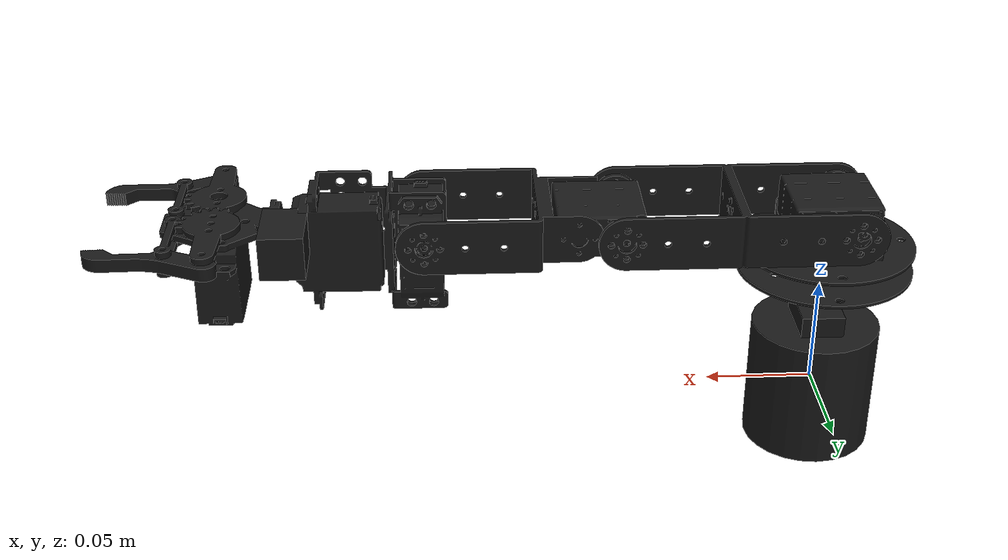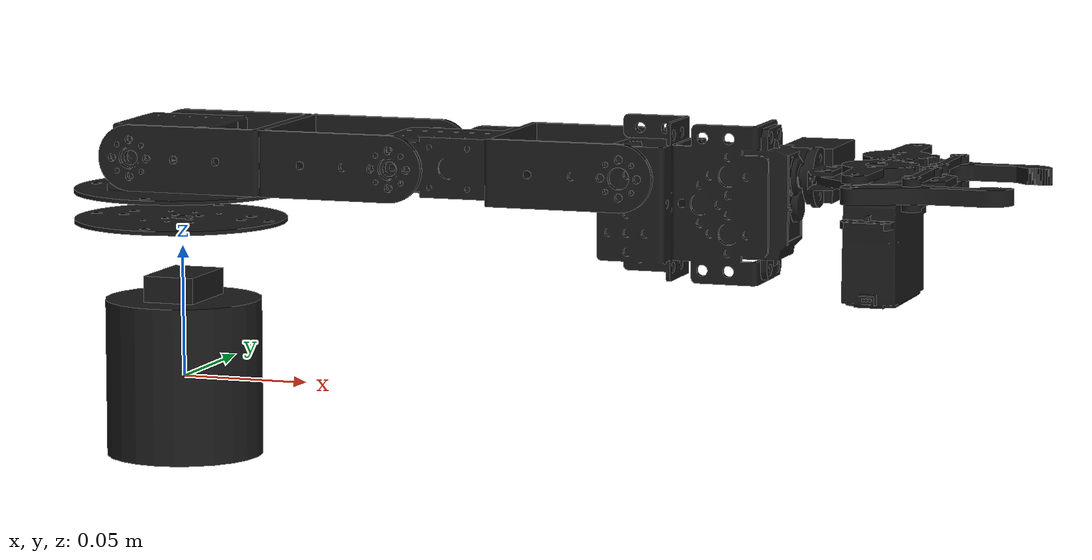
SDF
<?xml version="1.0"?>
<sdf version="1.9">
  <model name="learm_with_ardupilot">
    <include merge="true">
      <uri>model://learm</uri>
    </include>

    <!-- ArduPilot requires the robot have an IMU -->
    <link name="imu_link">
      <inertial>
        <pose>0 0 0 0 0 0</pose>
        <mass>0.15</mass>
        <inertia>
          <ixx>0.00001</ixx>
          <ixy>0</ixy>
          <ixz>0</ixz>
          <iyy>0.00002</iyy>
          <iyz>0</iyz>
          <izz>0.00002</izz>
        </inertia>
      </inertial>
      <sensor name="imu_sensor" type="imu">
        <gz_frame_id>imu_link</gz_frame_id>
        <pose degrees="true">0 0 0 180 0 0</pose>
        <always_on>1</always_on>
        <update_rate>1000.0</update_rate>
      </sensor>
    </link>
    <joint name="imu_joint" type="revolute">
      <parent>arm_base_link</parent>
      <child>imu_link</child>
      <axis>
        <xyz>0 0 1</xyz>
        <limit>
          <lower>0</lower>
          <upper>0</upper>
        </limit>
        <dynamics>
          <damping>1.0</damping>
        </dynamics>
      </axis>
    </joint>

    <plugin name="ArduPilotPlugin"
      filename="ArduPilotPlugin">
      <fdm_addr>127.0.0.1</fdm_addr>
      <fdm_port_in>9002</fdm_port_in>
      <connectionTimeoutMaxCount>5</connectionTimeoutMaxCount>
      <lock_step>1</lock_step>
      <no_time_sync>1</no_time_sync>
      <have_32_channels>0</have_32_channels>
      <modelXYZToAirplaneXForwardZDown degrees="true">0 0 0 180 0 0</modelXYZToAirplaneXForwardZDown>
      <gazeboXYZToNED degrees="true">0 0 0 180 0 90</gazeboXYZToNED>
      <imuName>imu_link::imu_sensor</imuName>

      <control channel="6">
        <jointName>shoulder_pan</jointName>
        <useForce>1</useForce>
        <multiplier>3.142</multiplier>
        <offset>-0.5</offset>
        <servo_min>1000</servo_min>
        <servo_max>2000</servo_max>
        <type>COMMAND</type>
        <cmd_topic>/learm/shoulder_pan/cmd_pos</cmd_topic>
      </control>

      <control channel="7">
        <jointName>shoulder_lift</jointName>
        <useForce>1</useForce>
        <multiplier>-3.142</multiplier>
        <offset>0.0</offset>
        <servo_min>1000</servo_min>
        <servo_max>2000</servo_max>
        <type>COMMAND</type>
        <cmd_topic>/learm/shoulder_lift/cmd_pos</cmd_topic>
      </control>

      <control channel="8">
        <jointName>elbow</jointName>
        <useForce>1</useForce>
        <multiplier>3.142</multiplier>
        <offset>-0.5</offset>
        <servo_min>1000</servo_min>
        <servo_max>2000</servo_max>
        <type>COMMAND</type>
        <cmd_topic>/learm/elbow/cmd_pos</cmd_topic>
      </control>

      <control channel="9">
        <jointName>wrist_flex</jointName>
        <useForce>1</useForce>
        <multiplier>3.142</multiplier>
        <offset>-0.5</offset>
        <servo_min>1000</servo_min>
        <servo_max>2000</servo_max>
        <type>COMMAND</type>
        <cmd_topic>/learm/wrist_flex/cmd_pos</cmd_topic>
      </control>

      <control channel="10">
        <jointName>wrist_roll</jointName>
        <useForce>1</useForce>
        <multiplier>3.142</multiplier>
        <offset>-0.5</offset>
        <servo_min>1000</servo_min>
        <servo_max>2000</servo_max>
        <type>COMMAND</type>
        <cmd_topic>/learm/wrist_roll/cmd_pos</cmd_topic>
      </control>

      <control channel="11">
        <jointName>grip_left</jointName>
        <useForce>1</useForce>
        <multiplier>1.57</multiplier>
        <offset>0.0</offset>
        <servo_min>1000</servo_min>
        <servo_max>2000</servo_max>
        <type>COMMAND</type>
        <cmd_topic>/learm/grip/cmd_pos</cmd_topic>
      </control>
    </plugin>
  </model>
</sdf>

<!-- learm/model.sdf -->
<sdf version="1.9">
  <model name="learm">
    <link name="arm_base_link">
      <self_collide>0</self_collide>
      <inertial>
        <pose>0 0 0 0 0 0</pose>
        <mass>0.034268493</mass>
        <inertia>
          <ixx>1.7991E-05</ixx>
          <ixy>0</ixy>
          <ixz>0</ixz>
          <iyy>1.7991E-05</iyy>
          <iyz>0</iyz>
          <izz>1.54208E-05</izz>
        </inertia>
      </inertial>
      <collision name="arm_base_link_collision">
        <pose>0 0 0 0 0 0</pose>
        <geometry>
          <cylinder>
            <radius>0.03</radius>
            <length>0.06</length>
          </cylinder>
        </geometry>
      </collision>
      <visual name="arm_base_link_visual">
        <pose>0 0 0 0 0 0</pose>
        <geometry>
          <cylinder>
            <radius>0.03</radius>
            <length>0.06</length>
          </cylinder>
        </geometry>
        <material>
          <ambient>0.1 0.1 0.1</ambient>
          <diffuse>0.1 0.1 0.1</diffuse>
          <specular>0.01 0.01 0.01 1.0</specular>
        </material>
      </visual>
    </link>

    <link name="camera_link">
      <pose relative_to="camera_base_joint">0 0 0 0 0 0</pose>
      <inertial>
        <pose>0 0 0 0 0 0</pose>
        <mass>0.01212</mass>
        <inertia>
          <ixx>0.000001313</ixx>
          <ixy>0</ixy>
          <ixz>0</ixz>
          <iyy>0.000000808</iyy>
          <iyz>0</iyz>
          <izz>0.000001313</izz>
        </inertia>
      </inertial>
      <collision name="camera_link_collision">
        <pose>0 0 0 0 0 0</pose>
        <geometry>
          <box>
            <size>0.02 0.03 0.02</size>
          </box>
        </geometry>
      </collision>
      <visual name="camera_link_visual">
        <pose>0 0 0 0 0 0</pose>
        <geometry>
          <box>
            <size>0.02 0.03 0.02</size>
          </box>
        </geometry>
        <material>
          <ambient>0.1 0.1 0.1</ambient>
          <diffuse>0.1 0.1 0.1</diffuse>
          <specular>0.01 0.01 0.01 1.0</specular>
        </material>
      </visual>
      <sensor name="camera_base" type="camera">
        <camera>
          <horizontal_fov>1.0472</horizontal_fov>
          <image>
            <width>320</width>
            <height>240</height>
          </image>
          <clip>
            <near>0.05</near>
            <far>100</far>
          </clip>
        </camera>
        <always_on>true</always_on>
        <update_rate>10</update_rate>
      </sensor>
    </link>
    <joint name="camera_base_joint" type="fixed">
      <pose relative_to="arm_base_link">0 0 0.03 0 0 0</pose>
      <parent>arm_base_link</parent>
      <child>camera_link</child>
    </joint>

    <link name="shoulder_link">
      <self_collide>0</self_collide>
      <pose relative_to="shoulder_pan">0 0 0 0 0 0</pose>
      <inertial>
        <pose>0 0 0 0 0 0</pose>
        <mass>0.02424</mass>
        <inertia>
          <ixx>0.00000505</ixx>
          <ixy>0</ixy>
          <ixz>0</ixz>
          <iyy>0.00000505</iyy>
          <iyz>0</iyz>
          <izz>0.000006464</izz>
        </inertia>
      </inertial>
      <collision name="shoulder_link_collision">
        <pose>0 0 0 0 0 0</pose>
        <geometry>
          <mesh>
            <scale>1 1 1</scale>
            <uri>package://ardupilot_gz_description/models/learm/meshes/shoulder.stl</uri>
          </mesh>
        </geometry>
      </collision>
      <visual name="shoulder_link_visual">
        <pose>0 0 0 0 0 0</pose>
        <geometry>
          <mesh>
            <scale>1 1 1</scale>
            <uri>package://ardupilot_gz_description/models/learm/meshes/shoulder.stl</uri>
          </mesh>
        </geometry>
        <material>
          <ambient>0.1 0.1 0.1</ambient>
          <diffuse>0.1 0.1 0.1</diffuse>
          <specular>0.01 0.01 0.01 1.0</specular>
        </material>
      </visual>
    </link>
    <joint name="shoulder_pan" type="revolute">
      <pose relative_to="arm_base_link">0 0 0.059 0 0 0</pose>
      <parent>arm_base_link</parent>
      <child>shoulder_link</child>
      <axis>
        <xyz>0 0 1</xyz>
        <limit>
          <lower>-1.57</lower>
          <upper>1.57</upper>
        </limit>
        <dynamics>
          <damping>0.01</damping>
        </dynamics>
      </axis>
    </joint>

    <link name="humerus_link">
      <self_collide>0</self_collide>
      <pose relative_to="shoulder_lift">0 0 0 0 0 0</pose>
      <inertial>
        <pose>0 0 0.03 0 0 0</pose>
        <mass>0.019831304</mass>
        <inertia>
          <ixx>2.23515E-05</ixx>
          <ixy>0</ixy>
          <ixz>0</ixz>
          <iyy>1.92529E-05</iyy>
          <iyz>0</iyz>
          <izz>5.1644E-06</izz>
        </inertia>
      </inertial>
      <collision name="humerus_link_collision">
        <pose>0 0 0 0 0 0</pose>
        <geometry>
          <mesh>
            <scale>1 1 1</scale>
            <uri>package://ardupilot_gz_description/models/learm/meshes/humerus.stl</uri>
          </mesh>
        </geometry>
      </collision>
      <visual name="humerus_link_visual">
        <pose>0 0 0 0 0 0</pose>
        <geometry>
          <mesh>
            <scale>1 1 1</scale>
            <uri>package://ardupilot_gz_description/models/learm/meshes/humerus.stl</uri>
          </mesh>
        </geometry>
        <material>
          <ambient>0.1 0.1 0.1</ambient>
          <diffuse>0.1 0.1 0.1</diffuse>
          <specular>0.01 0.01 0.01 1.0</specular>
        </material>
      </visual>
    </link>
    <joint name="shoulder_lift" type="revolute">
      <pose relative_to="shoulder_link" degrees="true">-0.01 0 0.028 0 90 0</pose>
      <parent>shoulder_link</parent>
      <child>humerus_link</child>
      <axis>
        <xyz>0 1 0</xyz>
        <limit>
          <lower>-3.142</lower>
          <upper>0.0</upper>
        </limit>
        <dynamics>
          <damping>0.01</damping>
        </dynamics>
      </axis>
    </joint>

    <link name="forearm_link">
      <self_collide>0</self_collide>
      <pose relative_to="elbow">0 0 0 0 0 0</pose>
      <inertial>
        <pose>0 0 0.01 0 0 0</pose>
        <mass>0.039662607</mass>
        <inertia>
          <ixx>1.35514E-05</ixx>
          <ixy>0</ixy>
          <ixz>0</ixz>
          <iyy>1.03288E-05</iyy>
          <iyz>0</iyz>
          <izz>7.35411E-06</izz>
        </inertia>
      </inertial>
      <collision name="forearm_link_collision">
        <pose>0 0 0 0 0 0</pose>
        <geometry>
          <mesh>
            <scale>1 1 1</scale>
            <uri>package://ardupilot_gz_description/models/learm/meshes/forearm.stl</uri>
          </mesh>
        </geometry>
      </collision>
      <visual name="forearm_link_visual">
        <pose>0 0 0 0 0 0</pose>
        <geometry>
          <mesh>
            <scale>1 1 1</scale>
            <uri>package://ardupilot_gz_description/models/learm/meshes/forearm.stl</uri>
          </mesh>
        </geometry>
        <material>
          <ambient>0.1 0.1 0.1</ambient>
          <diffuse>0.1 0.1 0.1</diffuse>
          <specular>0.01 0.01 0.01 1.0</specular>
        </material>
      </visual>
    </link>
    <joint name="elbow" type="revolute">
      <pose relative_to="humerus_link">0 0 0.105 0 0 0</pose>
      <parent>humerus_link</parent>
      <child>forearm_link</child>
      <axis>
        <xyz>0 -1 0</xyz>
        <limit>
          <lower>-1.57</lower>
          <upper>1.57</upper>
        </limit>
        <dynamics>
          <damping>0.04</damping>
        </dynamics>
      </axis>
    </joint>

    <link name="wrist_link">
      <self_collide>0</self_collide>
      <pose relative_to="wrist_flex">0 0 0 0 0 0</pose>
      <inertial>
        <pose>0.01 0 0.02 0 0 0</pose>
        <mass>0.07272</mass>
        <inertia>
          <ixx>0.00002727</ixx>
          <ixy>0</ixy>
          <ixz>0</ixz>
          <iyy>0.000031512</iyy>
          <iyz>0</iyz>
          <izz>0.00001515</izz>
        </inertia>
      </inertial>
      <collision name="wrist_link_collision">
        <pose>0 0 0 0 0 0</pose>
        <geometry>
          <mesh>
            <scale>1 1 1</scale>
            <uri>package://ardupilot_gz_description/models/learm/meshes/wrist.stl</uri>
          </mesh>
        </geometry>
      </collision>
      <visual name="wrist_link_visual">
        <pose>0 0 0 0 0 0</pose>
        <geometry>
          <mesh>
            <scale>1 1 1</scale>
            <uri>package://ardupilot_gz_description/models/learm/meshes/wrist.stl</uri>
          </mesh>
        </geometry>
        <material>
          <ambient>0.1 0.1 0.1</ambient>
          <diffuse>0.1 0.1 0.1</diffuse>
          <specular>0.01 0.01 0.01 1.0</specular>
        </material>
      </visual>
    </link>
    <joint name="wrist_flex" type="revolute">
      <pose relative_to="forearm_link">0 0 0.09 0 0 0</pose>
      <parent>forearm_link</parent>
      <child>wrist_link</child>
      <axis>
        <xyz>0 -1 0</xyz>
        <limit>
          <lower>-1.57</lower>
          <upper>1.57</upper>
        </limit>
        <dynamics>
          <damping>0.04</damping>
        </dynamics>
      </axis>
    </joint>

    <link name="hand_link">
      <self_collide>0</self_collide>
      <pose relative_to="wrist_roll">0 0 0 0 0 0</pose>
      <inertial>
        <pose>0.02 0 0.03 0 0 0</pose>
        <mass>0.06464</mass>
        <inertia>
          <ixx>1.72373E-05</ixx>
          <ixy>0</ixy>
          <ixz>0</ixz>
          <iyy>1.72373E-05</iyy>
          <iyz>0</iyz>
          <izz>1.72373E-05</izz>
        </inertia>
      </inertial>
      <collision name="hand_link_collision">
        <pose>0 0 0 0 0 0</pose>
        <geometry>
          <mesh>
            <scale>1 1 1</scale>
            <uri>package://ardupilot_gz_description/models/learm/meshes/hand.stl</uri>
          </mesh>
        </geometry>
      </collision>
      <visual name="hand_link_visual">
        <pose>0 0 0 0 0 0</pose>
        <geometry>
          <mesh>
            <scale>1 1 1</scale>
            <uri>package://ardupilot_gz_description/models/learm/meshes/hand.stl</uri>
          </mesh>
        </geometry>
        <material>
          <ambient>0.1 0.1 0.1</ambient>
          <diffuse>0.1 0.1 0.1</diffuse>
          <specular>0.01 0.01 0.01 1.0</specular>
        </material>
      </visual>
    </link>
    <joint name="wrist_roll" type="revolute">
      <pose relative_to="wrist_link">0 0 0.06 0 0 0</pose>
      <parent>wrist_link</parent>
      <child>hand_link</child>
      <axis>
        <xyz>0 0 1</xyz>
        <limit>
          <lower>-1.57</lower>
          <upper>1.57</upper>
        </limit>
        <dynamics>
          <damping>0.04</damping>
        </dynamics>
      </axis>
    </joint>

    <link name="camera_wrist_link">
      <pose relative_to="camera_wrist_joint">0 0 0 0 0 0</pose>
      <inertial>
        <pose>0 0 0 0 0 0</pose>
        <mass>0.01212</mass>
        <inertia>
          <ixx>0.000001313</ixx>
          <ixy>0</ixy>
          <ixz>0</ixz>
          <iyy>0.000000808</iyy>
          <iyz>0</iyz>
          <izz>0.000001313</izz>
        </inertia>
      </inertial>
      <collision name="camera_wrist_link_collision">
        <pose>0 0 0 0 0 0</pose>
        <geometry>
          <box>
            <size>0.02 0.03 0.02</size>
          </box>
        </geometry>
      </collision>
      <visual name="camera_wrist_link_visual">
        <pose>0 0 0 0 0 0</pose>
        <geometry>
          <box>
            <size>0.02 0.03 0.02</size>
          </box>
        </geometry>
        <material>
          <ambient>0.1 0.1 0.1</ambient>
          <diffuse>0.1 0.1 0.1</diffuse>
          <specular>0.01 0.01 0.01 1.0</specular>
        </material>
      </visual>
      <sensor name="camera_wrist" type="camera">
        <camera>
          <horizontal_fov>1.0472</horizontal_fov>
          <image>
            <width>320</width>
            <height>240</height>
          </image>
          <clip>
            <near>0.05</near>
            <far>100</far>
          </clip>
        </camera>
        <always_on>true</always_on>
        <update_rate>10</update_rate>
      </sensor>
    </link>
    <joint name="camera_wrist_joint" type="fixed">
      <pose relative_to="hand_link">0 0.02 0 0 0 0</pose>
      <parent>hand_link</parent>
      <child>camera_wrist_link</child>
    </joint>

    <link name="grip_left_link">
      <self_collide>0</self_collide>
      <pose relative_to="grip_left">0 0 0 0 0 0</pose>
      <inertial>
        <pose>0 0 0.01 0 0 0</pose>
        <mass>0.0037875</mass>
        <inertia>
          <ixx>8.60078E-07</ixx>
          <ixy>0</ixy>
          <ixz>0</ixz>
          <iyy>7.96953E-07</iyy>
          <iyz>0</iyz>
          <izz>7.89063E-08</izz>
        </inertia>
      </inertial>
      <collision name="grip_left_link_collision">
        <pose>0 0 0 0 0 0</pose>
        <geometry>
          <mesh>
            <scale>1 1 1</scale>
            <uri>package://ardupilot_gz_description/models/learm/meshes/carpal-left.stl</uri>
          </mesh>
        </geometry>
      </collision>
      <visual name="grip_left_link_visual">
        <pose>0 0 0 0 0 0</pose>
        <geometry>
          <mesh>
            <scale>1 1 1</scale>
            <uri>package://ardupilot_gz_description/models/learm/meshes/carpal-left.stl</uri>
          </mesh>
        </geometry>
        <material>
          <ambient>0.1 0.1 0.1</ambient>
          <diffuse>0.1 0.1 0.1</diffuse>
          <specular>0.01 0.01 0.01 1.0</specular>
        </material>
      </visual>
    </link>
    <joint name="grip_left" type="revolute">
      <pose relative_to="hand_link">-0.006 0.0137 0.0318 -1.57 0 0</pose>
      <parent>hand_link</parent>
      <child>grip_left_link</child>
      <axis>
        <xyz>1 0 0</xyz>
        <limit>
          <lower>0</lower>
          <upper>1.57</upper>
        </limit>
        <dynamics>
          <damping>0.01</damping>
        </dynamics>
      </axis>
    </joint>

    <link name="finger_left_link">
      <self_collide>0</self_collide>
      <pose relative_to="finger_left">0 0 0 0 0 0</pose>
      <inertial>
        <pose>0 -0.01 0.025 0 0 0</pose>
        <mass>0.00303</mass>
        <inertia>
          <ixx>9.3425E-07</ixx>
          <ixy>0</ixy>
          <ixz>0</ixz>
          <iyy>9.15313E-07</iyy>
          <iyz>0</iyz>
          <izz>3.15625E-08</izz>
        </inertia>
      </inertial>
      <collision name="finger_left_link_collision">
        <pose>0 0 0 0 0 0</pose>
        <geometry>
          <mesh>
            <scale>1 1 1</scale>
            <uri>package://ardupilot_gz_description/models/learm/meshes/finger.stl</uri>
          </mesh>
        </geometry>
      </collision>
      <visual name="finger_left_link_visual">
        <pose>0 0 0 0 0 0</pose>
        <geometry>
          <mesh>
            <scale>1 1 1</scale>
            <uri>package://ardupilot_gz_description/models/learm/meshes/finger.stl</uri>
          </mesh>
        </geometry>
        <material>
          <ambient>0.1 0.1 0.1</ambient>
          <diffuse>0.1 0.1 0.1</diffuse>
          <specular>0.01 0.01 0.01 1.0</specular>
        </material>
      </visual>
    </link>
    <joint name="finger_left" type="revolute">
      <pose relative_to="grip_left_link">0.006 0 0.029 1.57 0 0</pose>
      <parent>grip_left_link</parent>
      <child>finger_left_link</child>
      <axis>
        <xyz>-1 0 0</xyz>
        <limit>
          <lower>0</lower>
          <upper>1.57</upper>
        </limit>
        <dynamics>
          <damping>0.01</damping>
        </dynamics>
      </axis>
    </joint>

    <link name="grip_right_link">
      <self_collide>0</self_collide>
      <pose relative_to="grip_right">0 0 0 0 0 0</pose>
      <inertial>
        <pose>0 0 0.01 0 0 0</pose>
        <mass>0.0037875</mass>
        <inertia>
          <ixx>8.60078E-07</ixx>
          <ixy>0</ixy>
          <ixz>0</ixz>
          <iyy>7.96953E-07</iyy>
          <iyz>0</iyz>
          <izz>7.89063E-08</izz>
        </inertia>
      </inertial>
      <collision name="grip_right_link_collision">
        <pose>0 0 0 0 0 0</pose>
        <geometry>
          <mesh>
            <scale>1 1 1</scale>
            <uri>package://ardupilot_gz_description/models/learm/meshes/carpal-right.stl</uri>
          </mesh>
        </geometry>
      </collision>
      <visual name="grip_right_link_visual">
        <pose>0 0 0 0 0 0</pose>
        <geometry>
          <mesh>
            <scale>1 1 1</scale>
            <uri>package://ardupilot_gz_description/models/learm/meshes/carpal-right.stl</uri>
          </mesh>
        </geometry>
        <material>
          <ambient>0.1 0.1 0.1</ambient>
          <diffuse>0.1 0.1 0.1</diffuse>
          <specular>0.01 0.01 0.01 1.0</specular>
        </material>
      </visual>
    </link>
    <joint name="grip_right" type="revolute">
      <pose relative_to="hand_link">-0.008 -0.0137 0.0315 1.57 0 0</pose>
      <parent>hand_link</parent>
      <child>grip_right_link</child>
      <axis>
        <xyz>-1 0 0</xyz>
        <limit>
          <lower>0</lower>
          <upper>1.57</upper>
        </limit>
        <dynamics>
          <damping>0.01</damping>
        </dynamics>
      </axis>
    </joint>

    <link name="finger_right_link">
      <self_collide>0</self_collide>
      <pose relative_to="finger_right">0 0 0 0 0 0</pose>
      <inertial>
        <pose>0 0.01 0.025 0 0 0</pose>
        <mass>0.00303</mass>
        <inertia>
          <ixx>9.3425E-07</ixx>
          <ixy>0</ixy>
          <ixz>0</ixz>
          <iyy>9.15313E-07</iyy>
          <iyz>0</iyz>
          <izz>3.15625E-08</izz>
        </inertia>
      </inertial>
      <collision name="finger_right_link_collision">
        <pose>0 0 0 0 0 3.1415899999999999</pose>
        <geometry>
          <mesh>
            <scale>1 1 1</scale>
            <uri>package://ardupilot_gz_description/models/learm/meshes/finger.stl</uri>
          </mesh>
        </geometry>
      </collision>
      <visual name="finger_right_link_visual">
        <pose>0 0 0 0 0 3.1415899999999999</pose>
        <geometry>
          <mesh>
            <scale>1 1 1</scale>
            <uri>package://ardupilot_gz_description/models/learm/meshes/finger.stl</uri>
          </mesh>
        </geometry>
        <material>
          <ambient>0.1 0.1 0.1</ambient>
          <diffuse>0.1 0.1 0.1</diffuse>
          <specular>0.01 0.01 0.01 1.0</specular>
        </material>
      </visual>
    </link>
    <joint name="finger_right" type="revolute">
      <pose relative_to="grip_right_link">0.008 0 0.03 -1.57 0 0</pose>
      <parent>grip_right_link</parent>
      <child>finger_right_link</child>
      <axis>
        <xyz>1 0 0</xyz>
        <limit>
          <lower>0</lower>
          <upper>1.57</upper>
        </limit>
        <dynamics>
          <damping>0.01</damping>
        </dynamics>
      </axis>
    </joint>

    <link name="tendon_left_link">
      <self_collide>0</self_collide>
      <pose relative_to="tendon_left">0 0 0 0 0 0</pose>
      <inertial>
        <pose>0 0 0.02 0 0 0</pose>
        <mass>0.00202</mass>
        <inertia>
          <ixx>2.86167E-07</ixx>
          <ixy>0</ixy>
          <ixz>0</ixz>
          <iyy>2.73542E-07</iyy>
          <iyz>0</iyz>
          <izz>2.10417E-08</izz>
        </inertia>
      </inertial>
      <collision name="tendon_left_link_collision">
        <pose>0 0 0 0 0 0</pose>
        <geometry>
          <mesh>
            <scale>1 1 1</scale>
            <uri>package://ardupilot_gz_description/models/learm/meshes/tendon.stl</uri>
          </mesh>
        </geometry>
      </collision>
      <visual name="tendon_left_link_visual">
        <pose>0 0 0 0 0 0</pose>
        <geometry>
          <mesh>
            <scale>1 1 1</scale>
            <uri>package://ardupilot_gz_description/models/learm/meshes/tendon.stl</uri>
          </mesh>
        </geometry>
        <material>
          <ambient>0.1 0.1 0.1</ambient>
          <diffuse>0.1 0.1 0.1</diffuse>
          <specular>0.01 0.01 0.01 1.0</specular>
        </material>
      </visual>
    </link>
    <joint name="tendon_left" type="revolute">
      <pose relative_to="hand_link">0 0.005 0.05 -1.57 0 0</pose>
      <parent>hand_link</parent>
      <child>tendon_left_link</child>
      <axis>
        <xyz>1 0 0</xyz>
        <limit>
          <lower>0</lower>
          <upper>1.57</upper>
        </limit>
        <dynamics>
          <damping>0.01</damping>
        </dynamics>
      </axis>
    </joint>

    <link name="tendon_right_link">
      <self_collide>0</self_collide>
      <pose relative_to="tendon_right">0 0 0 0 0 0</pose>
      <inertial>
        <pose>0 0 0.02 0 0 0</pose>
        <mass>0.00202</mass>
        <inertia>
          <ixx>2.86167E-07</ixx>
          <ixy>0</ixy>
          <ixz>0</ixz>
          <iyy>2.73542E-07</iyy>
          <iyz>0</iyz>
          <izz>2.10417E-08</izz>
        </inertia>
      </inertial>
      <collision name="tendon_right_link_collision">
        <pose>0 0 0 0 0 0</pose>
        <geometry>
          <mesh>
            <scale>1 1 1</scale>
            <uri>package://ardupilot_gz_description/models/learm/meshes/tendon.stl</uri>
          </mesh>
        </geometry>
      </collision>
      <visual name="tendon_right_link_visual">
        <pose>0 0 0 0 0 0</pose>
        <geometry>
          <mesh>
            <scale>1 1 1</scale>
            <uri>package://ardupilot_gz_description/models/learm/meshes/tendon.stl</uri>
          </mesh>
        </geometry>
        <material>
          <ambient>0.1 0.1 0.1</ambient>
          <diffuse>0.1 0.1 0.1</diffuse>
          <specular>0.01 0.01 0.01 1.0</specular>
        </material>
      </visual>
    </link>
    <joint name="tendon_right" type="revolute">
      <pose relative_to="hand_link">0 -0.005 0.05 1.57 0 0</pose>
      <parent>hand_link</parent>
      <child>tendon_right_link</child>
      <axis>
        <xyz>-1 0 0</xyz>
        <limit>
          <lower>0</lower>
          <upper>1.57</upper>
        </limit>
        <dynamics>
          <damping>0.01</damping>
        </dynamics>
      </axis>
    </joint>

    <plugin filename="gz-sim-joint-state-publisher-system"
      name="gz::sim::systems::JointStatePublisher">
    </plugin>

    <plugin filename="gz-sim-joint-position-controller-system"
        name="gz::sim::systems::JointPositionController">
      <joint_name>shoulder_pan</joint_name>
      <topic>/learm/shoulder_pan/cmd_pos</topic>
      <initial_position>0.0</initial_position>
      <p_gain>1.0</p_gain>
      <i_gain>0.0</i_gain>
      <d_gain>0.1</d_gain>
      <i_max>1</i_max>
      <i_min>-1</i_min>
      <cmd_max>10</cmd_max>
      <cmd_min>-10</cmd_min>
    </plugin>

    <plugin filename="gz-sim-joint-position-controller-system"
        name="gz::sim::systems::JointPositionController">
      <joint_name>shoulder_lift</joint_name>
      <topic>/learm/shoulder_lift/cmd_pos</topic>
      <initial_position>-0.3</initial_position>
      <p_gain>4</p_gain>
      <i_gain>0.0</i_gain>
      <d_gain>0.6</d_gain>
      <i_max>1</i_max>
      <i_min>-1</i_min>
      <cmd_max>50</cmd_max>
      <cmd_min>-50</cmd_min>
    </plugin>

    <plugin filename="gz-sim-joint-position-controller-system"
        name="gz::sim::systems::JointPositionController">
      <joint_name>elbow</joint_name>
      <topic>/learm/elbow/cmd_pos</topic>
      <initial_position>-1.0</initial_position>
      <p_gain>2</p_gain>
      <i_gain>0.0</i_gain>
      <d_gain>0.05</d_gain>
      <i_max>1</i_max>
      <i_min>-1</i_min>
      <cmd_max>10</cmd_max>
      <cmd_min>-10</cmd_min>
    </plugin>

    <plugin filename="gz-sim-joint-position-controller-system"
        name="gz::sim::systems::JointPositionController">
      <joint_name>wrist_flex</joint_name>
      <topic>/learm/wrist_flex/cmd_pos</topic>
      <initial_position>1.57</initial_position>
      <p_gain>1</p_gain>
      <i_gain>0.0</i_gain>
      <d_gain>0.01</d_gain>
      <i_max>1</i_max>
      <i_min>-1</i_min>
      <cmd_max>10</cmd_max>
      <cmd_min>-10</cmd_min>
    </plugin>

    <plugin filename="gz-sim-joint-position-controller-system"
        name="gz::sim::systems::JointPositionController">
      <joint_name>wrist_roll</joint_name>
      <topic>/learm/wrist_roll/cmd_pos</topic>
      <initial_position>0.0</initial_position>
      <p_gain>1</p_gain>
      <i_gain>0.0</i_gain>
      <d_gain>0.01</d_gain>
      <i_max>1</i_max>
      <i_min>-1</i_min>
      <cmd_max>10</cmd_max>
      <cmd_min>-10</cmd_min>
    </plugin>

    <plugin filename="gz-sim-joint-position-controller-system"
        name="gz::sim::systems::JointPositionController">
      <joint_name>grip_left</joint_name>
      <topic>/learm/grip/cmd_pos</topic>
      <initial_position>0.0</initial_position>
      <p_gain>1</p_gain>
      <i_gain>0.0</i_gain>
      <d_gain>0.0</d_gain>
      <i_max>1</i_max>
      <i_min>-1</i_min>
      <cmd_max>10</cmd_max>
      <cmd_min>-10</cmd_min>
    </plugin>

    <plugin filename="gz-sim-joint-position-controller-system"
        name="gz::sim::systems::JointPositionController">
      <joint_name>grip_right</joint_name>
      <topic>/learm/grip/cmd_pos</topic>
      <initial_position>0.0</initial_position>
      <p_gain>1</p_gain>
      <i_gain>0.0</i_gain>
      <d_gain>0.0</d_gain>
      <i_max>1</i_max>
      <i_min>-1</i_min>
      <cmd_max>10</cmd_max>
      <cmd_min>-10</cmd_min>
    </plugin>

    <plugin filename="gz-sim-joint-position-controller-system"
        name="gz::sim::systems::JointPositionController">
      <joint_name>finger_left</joint_name>
      <topic>/learm/grip/cmd_pos</topic>
      <initial_position>0.0</initial_position>
      <p_gain>1</p_gain>
      <i_gain>0.0</i_gain>
      <d_gain>0.0</d_gain>
      <i_max>1</i_max>
      <i_min>-1</i_min>
      <cmd_max>10</cmd_max>
      <cmd_min>-10</cmd_min>
    </plugin>

    <plugin filename="gz-sim-joint-position-controller-system"
        name="gz::sim::systems::JointPositionController">
      <joint_name>finger_right</joint_name>
      <topic>/learm/grip/cmd_pos</topic>
      <initial_position>0.0</initial_position>
      <p_gain>1</p_gain>
      <i_gain>0.0</i_gain>
      <d_gain>0.0</d_gain>
      <i_max>1</i_max>
      <i_min>-1</i_min>
      <cmd_max>10</cmd_max>
      <cmd_min>-10</cmd_min>
    </plugin>

    <plugin filename="gz-sim-joint-position-controller-system"
        name="gz::sim::systems::JointPositionController">
      <joint_name>tendon_left</joint_name>
      <topic>/learm/grip/cmd_pos</topic>
      <initial_position>0.0</initial_position>
      <p_gain>1</p_gain>
      <i_gain>0.0</i_gain>
      <d_gain>0.0</d_gain>
      <i_max>1</i_max>
      <i_min>-1</i_min>
      <cmd_max>10</cmd_max>
      <cmd_min>-10</cmd_min>
    </plugin>

    <plugin filename="gz-sim-joint-position-controller-system"
        name="gz::sim::systems::JointPositionController">
      <joint_name>tendon_right</joint_name>
      <topic>/learm/grip/cmd_pos</topic>
      <initial_position>0.0</initial_position>
      <p_gain>1</p_gain>
      <i_gain>0.0</i_gain>
      <d_gain>0.0</d_gain>
      <i_max>1</i_max>
      <i_min>-1</i_min>
      <cmd_max>10</cmd_max>
      <cmd_min>-10</cmd_min>
    </plugin>

  </model>
</sdf>
